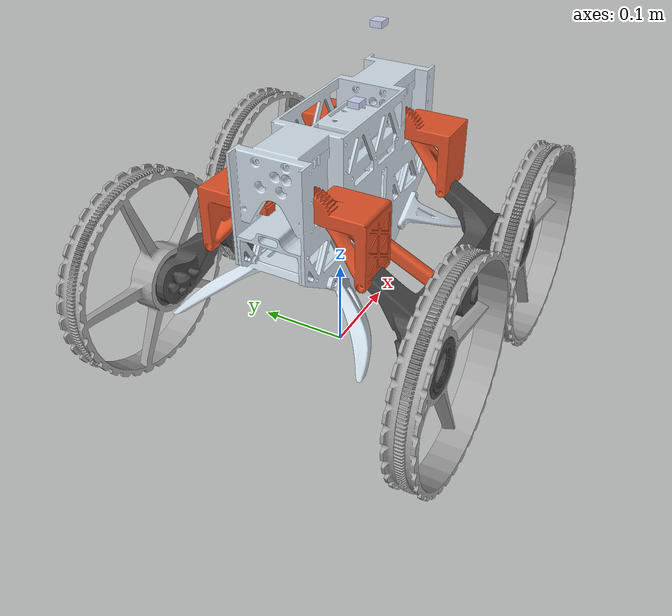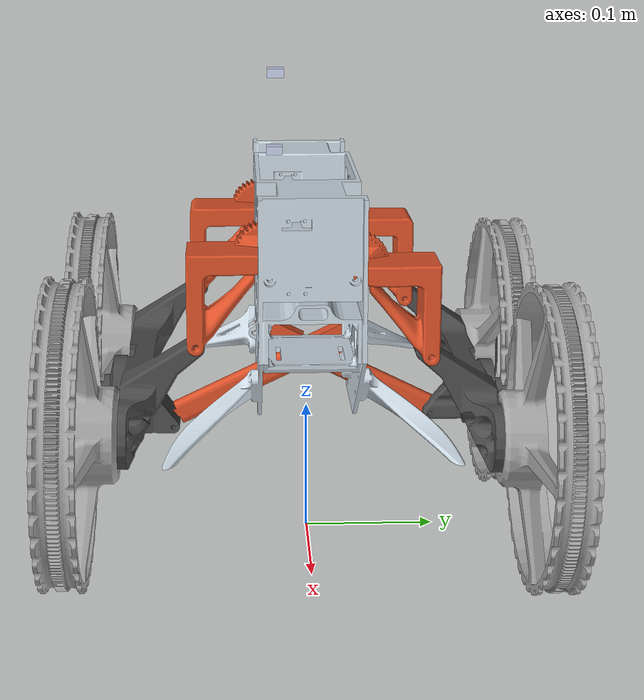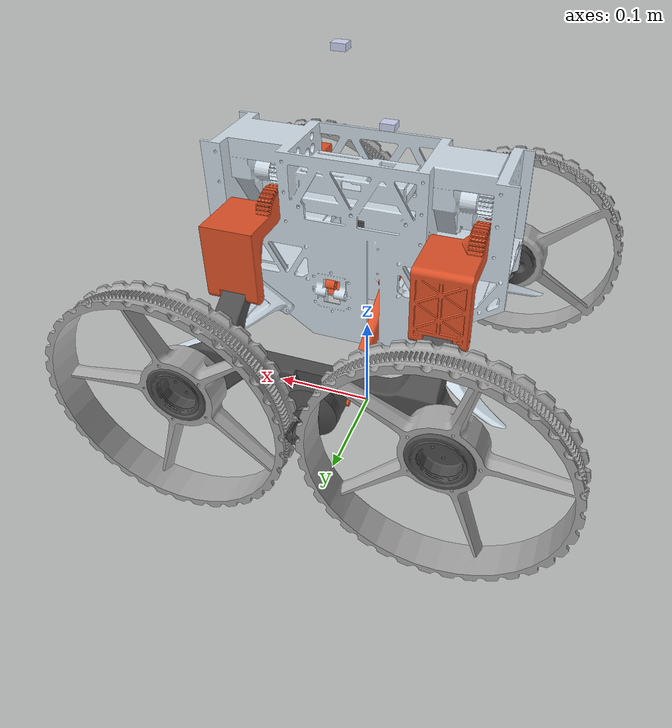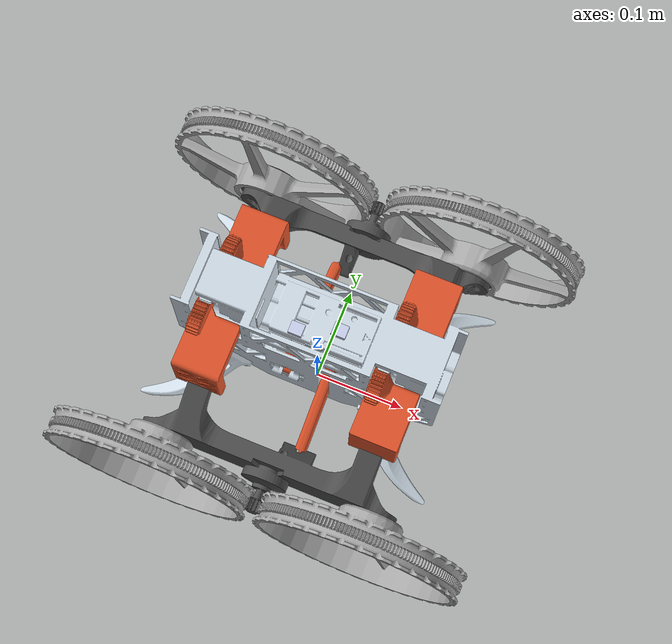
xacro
<?xml version="1.0"?>
<robot xmlns:xacro="http://ros.org/wiki/xacro" name="drobot">

  <xacro:include filename="$(find drobot_description)/urdf/gazebo.xacro"/>

  <xacro:arg name="use_sim" default="true"/>
  <xacro:arg name="use_ros2_control" default="true"/>

  <!-- ==================== MATERIALS ==================== -->
  <material name="base_color"><color rgba="0.81 0.86 0.90 1"/></material>
  <material name="arm_color"><color rgba="0.87 0.32 0.16 1"/></material>
  <material name="frame_color"><color rgba="0.30 0.30 0.30 1"/></material>
  <material name="wheel_color"><color rgba="0.65 0.65 0.65 1"/></material>
  <material name="sensor_color"><color rgba="0.79 0.82 0.93 1"/></material>

  <!-- ==================== BASE ==================== -->
  <link name="base_footprint"/>

  <joint name="base_footprint_joint" type="fixed">
    <parent link="base_footprint"/>
    <child link="base_link"/>
    <origin xyz="0 0 0" rpy="0 0 0"/>
  </joint>

  <link name="base_link">
    <inertial>
      <origin xyz="0.00458103694773914 -0.00104664211572963 0.221167547284754" rpy="0 0 0"/>
      <mass value="0.832637440945029"/>
      <inertia ixx="0.000773069077682801" ixy="-7.38474804169069E-08" ixz="3.15446327066613E-05"
               iyy="0.00170450440360595" iyz="9.65699121565219E-07" izz="0.00134874358561967"/>
    </inertial>
    <visual>
      <origin xyz="0 0 0" rpy="0 0 0"/>
      <geometry><mesh filename="package://drobot_description/meshes/base_link.STL"/></geometry>
      <material name="base_color"/>
    </visual>
    <collision>
      <origin xyz="0 0 0" rpy="0 0 0"/>
      <geometry><mesh filename="package://drobot_description/meshes/base_link.STL"/></geometry>
    </collision>
  </link>

  <!-- ==================== LIDAR ==================== -->
  <link name="base_scan">
    <inertial>
      <origin xyz="-0.0215847721606996 0.00397566854868606 -0.00218033584701988" rpy="0 0 0"/>
      <mass value="0.00105539669078503"/>
      <inertia ixx="1.6596115838381E-08" ixy="4.5351666504703E-24" ixz="-8.45778550488722E-25"
               iyy="1.98921505758854E-08" iyz="2.17400907909987E-25" izz="2.93717011285355E-08"/>
    </inertial>
    <visual>
      <origin xyz="0 0 0" rpy="0 0 0"/>
      <geometry><mesh filename="package://drobot_description/meshes/lidar.STL"/></geometry>
      <material name="sensor_color"/>
    </visual>
    <collision>
      <origin xyz="0 0 0" rpy="0 0 0"/>
      <geometry><mesh filename="package://drobot_description/meshes/lidar.STL"/></geometry>
    </collision>
  </link>

  <joint name="lidar_joint" type="fixed">
    <origin xyz="0.010101 -0.027788 0.30154" rpy="0 0 0"/>
    <parent link="base_link"/>
    <child link="base_scan"/>
  </joint>

  <!-- ==================== CAMERA ==================== -->
  <link name="camera_link">
    <inertial>
      <origin xyz="-0.0215847721606996 0.00397566854868603 -0.00218033584701988" rpy="3.1416 0 3.1416"/>
      <mass value="0.00105539669078502"/>
      <inertia ixx="1.65961158383809E-08" ixy="-6.9134081160347E-24" ixz="-1.3026067311437E-23"
               iyy="1.98921505758854E-08" iyz="1.59079600624928E-24" izz="2.93717011285354E-08"/>
    </inertial>
    <visual>
      <origin xyz="0 0 0" rpy="3.1416 0 3.1416"/>
      <geometry><mesh filename="package://drobot_description/meshes/camera.STL"/></geometry>
      <material name="sensor_color"/>
    </visual>
    <collision>
      <origin xyz="0 0 0" rpy="3.1416 0 3.1416"/>
      <geometry><mesh filename="package://drobot_description/meshes/camera.STL"/></geometry>
    </collision>
  </link>

  <joint name="camera_joint" type="fixed">
    <origin xyz="0.010101 -0.027788 0.36" rpy="0 0 0"/>
    <parent link="base_link"/>
    <child link="camera_link"/>
  </joint>

  <link name="camera_link_optical"/>
  <joint name="camera_optical_joint" type="fixed">
    <origin xyz="0 0 0" rpy="-1.5707963267948966 0 -1.5707963267948966"/>
    <parent link="camera_link"/>
    <child link="camera_link_optical"/>
  </joint>

  <!-- ==================== IMU (virtual, no mesh) ==================== -->
  <link name="imu_link">
    <inertial>
      <origin xyz="0 0 0" rpy="0 0 0"/>
      <mass value="0.01"/>
      <inertia ixx="1e-06" ixy="0" ixz="0" iyy="1e-06" iyz="0" izz="1e-06"/>
    </inertial>
  </link>

  <joint name="imu_joint" type="fixed">
    <parent link="base_link"/>
    <child link="imu_link"/>
    <origin xyz="0 0 0.01" rpy="0 0 0"/>
  </joint>

  <!-- ==================== LEFT FRONT ARM ==================== -->
  <link name="left_front_arm">
    <inertial>
      <origin xyz="0.018998 0.04 0.112534" rpy="0 0 0"/>
      <mass value="0.123064431731573"/>
      <inertia ixx="0.000135741612972814" ixy="6.13644622591408E-06" ixz="-3.91949328277525E-06"
               iyy="6.76036048729945E-05" iyz="4.48906032629936E-05" izz="0.000106939767969889"/>
    </inertial>
    <visual>
      <origin xyz="0 0 -0.216881" rpy="0 0 0"/>
      <geometry><mesh filename="package://drobot_description/meshes/left_front_arm.STL"/></geometry>
      <material name="arm_color"/>
    </visual>
    <collision>
      <origin xyz="0 0 -0.216881" rpy="0 0 0"/>
      <geometry><mesh filename="package://drobot_description/meshes/left_front_arm.STL"/></geometry>
    </collision>
  </link>

  <joint name="lf_arm_rev" type="revolute">
    <origin xyz="0.001 0.024 0.240" rpy="3.1416 0 3.1416"/>
    <parent link="base_link"/>
    <child link="left_front_arm"/>
    <axis xyz="-1 0 0"/>
    <limit lower="0" upper="1.5708" effort="14.0" velocity="0.5"/>
    <dynamics damping="4.0" friction="5.0"/>
  </joint>

  <!-- ==================== LEFT SIDE FRAME ==================== -->
  <link name="left_side_frame">
    <inertial>
      <origin xyz="0.000123207540564108 0.109960226689103 0.335761073502946" rpy="0 0 0"/>
      <mass value="0.385275324463581"/>
      <inertia ixx="0.000226753304752499" ixy="-1.11398827218514E-05" ixz="6.22551133000347E-06"
               iyy="0.00238329526316141" iyz="-5.33911597507339E-05" izz="0.00245899243822558"/>
    </inertial>
    <visual>
      <origin xyz="0 0 0" rpy="0 0 0"/>
      <geometry><mesh filename="package://drobot_description/meshes/left_side_frame.STL"/></geometry>
      <material name="frame_color"/>
    </visual>
    <collision>
      <origin xyz="0 0 0" rpy="0 0 0"/>
      <geometry><mesh filename="package://drobot_description/meshes/left_side_frame.STL"/></geometry>
    </collision>
  </link>

  <joint name="left_sf_fix" type="fixed">
    <origin xyz="0.0005 -0.000798 -0.217469" rpy="0.010035 0 0"/>
    <parent link="left_front_arm"/>
    <child link="left_side_frame"/>
  </joint>

  <!-- ==================== LEFT FRONT WHEEL ==================== -->
  <link name="left_front_wheel">
    <inertial>
      <origin xyz="-3.80634406216274E-08 0.0147130977298118 -4.33058131021902E-08" rpy="0 0 0"/>
      <mass value="0.154468227846206"/>
      <inertia ixx="0.000600972336966455" ixy="-1.7094296974559E-11" ixz="1.67775124672545E-10"
               iyy="0.00115446036705922" iyz="-2.61109881198951E-11" izz="0.000600972175604584"/>
    </inertial>
    <visual>
      <origin xyz="0 0 0" rpy="0 0 0"/>
      <geometry><mesh filename="package://drobot_description/meshes/left_front_wheel.STL"/></geometry>
      <material name="wheel_color"/>
    </visual>
    <collision>
      <origin xyz="0 0 0" rpy="0 0 0"/>
      <geometry><mesh filename="package://drobot_description/meshes/left_front_wheel.STL"/></geometry>
    </collision>
  </link>

  <joint name="lf_wheel_con" type="continuous">
    <origin xyz="-0.11656 0.128 0.346" rpy="0 0 0"/>
    <parent link="left_side_frame"/>
    <child link="left_front_wheel"/>
    <axis xyz="0 1 0"/>
    <dynamics damping="0.1" friction="0.05"/>
  </joint>

  <!-- ==================== LEFT REAR WHEEL ==================== -->
  <link name="left_rear_wheel">
    <inertial>
      <origin xyz="-0.000764539518262372 0.0131052613053511 -0.000764533553625352" rpy="0 0 0"/>
      <mass value="0.152313021640434"/>
      <inertia ixx="0.000598326645638881" ixy="1.16817760587612E-11" ixz="1.64181067073089E-10"
               iyy="0.00115252805512864" iyz="2.67998148070656E-11" izz="0.000598326477272364"/>
    </inertial>
    <visual>
      <origin xyz="0 0 0" rpy="0 0 0"/>
      <geometry><mesh filename="package://drobot_description/meshes/left_rear_wheel.STL"/></geometry>
      <material name="wheel_color"/>
    </visual>
    <collision>
      <origin xyz="0 0 0" rpy="0 0 0"/>
      <geometry><mesh filename="package://drobot_description/meshes/left_rear_wheel.STL"/></geometry>
    </collision>
  </link>

  <joint name="lr_wheel_con" type="continuous">
    <origin xyz="0.11733 0.128 0.34676" rpy="0 0 0"/>
    <parent link="left_side_frame"/>
    <child link="left_rear_wheel"/>
    <axis xyz="0 1 0"/>
    <dynamics damping="0.1" friction="0.05"/>
  </joint>

  <!-- ==================== LEFT REAR ARM ==================== -->
  <!-- SW2URDF exported mass=0, inertia=0 (degenerate).
       Fixed to mass=0.05, inertia=1e-04 for stable simulation. -->
  <link name="left_rear_arm">
    <inertial>
      <origin xyz="0.018998 -0.000534 0.112534" rpy="0 0 0"/>
      <mass value="0.123064431731573"/>
      <inertia ixx="0.000135741612972814" ixy="6.13644622591408E-06" ixz="-3.91949328277525E-06"
               iyy="6.76036048729945E-05" iyz="4.48906032629936E-05" izz="0.000106939767969889"/>
    </inertial>
    <visual>
      <origin xyz="0 -0.022671 -0.216881" rpy="0 0 0"/>
      <geometry><mesh filename="package://drobot_description/meshes/left_rear_arm.STL"/></geometry>
      <material name="arm_color"/>
    </visual>
  </link>

  <joint name="lr_arm_rev" type="revolute">
    <origin xyz="0.001 0.024 0.240" rpy="1.5708 0 3.1416"/>
    <parent link="base_link"/>
    <child link="left_rear_arm"/>
    <axis xyz="-1 0 0"/>
    <limit lower="0" upper="1.5708" effort="14.0" velocity="0.5"/>
    <dynamics damping="3.0" friction="3.0"/>
  </joint>

  <!-- ==================== RIGHT FRONT ARM ==================== -->
  <link name="right_front_arm">
    <inertial>
      <origin xyz="-0.072133 0.017001 -0.051593" rpy="0 0 0"/>
      <mass value="0.123064431731573"/>
      <inertia ixx="0.000135741612972814" ixy="6.13644622591408E-06" ixz="-3.91949328277525E-06"
               iyy="6.76036048729945E-05" iyz="4.48906032629936E-05" izz="0.000106939767969889"/>
    </inertial>
    <visual>
      <origin xyz="0 -0.002488 -0.175993" rpy="0 0 0"/>
      <geometry><mesh filename="package://drobot_description/meshes/right_front_arm.STL"/></geometry>
      <material name="arm_color"/>
    </visual>
    <collision>
      <origin xyz="0 -0.002488 -0.175993" rpy="0 0 0"/>
      <geometry><mesh filename="package://drobot_description/meshes/right_front_arm.STL"/></geometry>
    </collision>
  </link>

  <joint name="rf_arm_rev" type="revolute">
    <origin xyz="0.001 -0.025 0.249" rpy="0 0 3.1416"/>
    <parent link="base_link"/>
    <child link="right_front_arm"/>
    <axis xyz="1 0 0"/>
    <limit lower="0" upper="1.5708" effort="14.0" velocity="0.5"/>
    <dynamics damping="4.0" friction="5.0"/>
  </joint>

  <!-- ==================== RIGHT SIDE FRAME ==================== -->
  <link name="right_side_frame">
    <inertial>
      <origin xyz="-0.0016945696607339 0.00768032725914354 0.0578233422450269" rpy="0 0 0"/>
      <mass value="0.385275324463581"/>
      <inertia ixx="0.000226753304752499" ixy="-1.11398827218514E-05" ixz="6.22551133000347E-06"
               iyy="0.00238329526316141" iyz="-5.33911597507339E-05" izz="0.00245899243822558"/>
    </inertial>
    <visual>
      <origin xyz="0 0 0" rpy="0 0 0"/>
      <geometry><mesh filename="package://drobot_description/meshes/right_side_frame.STL"/></geometry>
      <material name="frame_color"/>
    </visual>
    <collision>
      <origin xyz="0 0 0" rpy="0 0 0"/>
      <geometry><mesh filename="package://drobot_description/meshes/right_side_frame.STL"/></geometry>
    </collision>
  </link>

  <joint name="right_sf_fix" type="fixed">
    <origin xyz="0.0005 0.165912 -0.131417" rpy="1.5947 0 0"/>
    <parent link="right_front_arm"/>
    <child link="right_side_frame"/>
  </joint>

  <!-- ==================== RIGHT FRONT WHEEL ==================== -->
  <link name="right_front_wheel">
    <inertial>
      <origin xyz="3.51455239633314E-08 0.0147130944445312 -4.61456092365475E-08" rpy="0 0 0"/>
      <mass value="0.15446818358736"/>
      <inertia ixx="0.000600972029928564" ixy="2.98508353457573E-11" ixz="-1.05292533647964E-10"
               iyy="0.00115446021177649" iyz="-1.79621475028882E-11" izz="0.000600972338304762"/>
    </inertial>
    <visual>
      <origin xyz="0 0 0" rpy="0 0 0"/>
      <geometry><mesh filename="package://drobot_description/meshes/right_front_wheel.STL"/></geometry>
      <material name="wheel_color"/>
    </visual>
    <collision>
      <origin xyz="0 0 0" rpy="0 0 0"/>
      <geometry><mesh filename="package://drobot_description/meshes/right_front_wheel.STL"/></geometry>
    </collision>
  </link>

  <!-- RIGHT WHEELS: axis kept at (0,-1,0) as exported.
       Right arm rpy~(0,0,pi) does NOT flip Y in the same way,
       so original axis direction produces correct forward motion. -->
  <joint name="rf_wheel_con" type="continuous">
    <origin xyz="-0.11656 0 0.039" rpy="-1.5708 0 0"/>
    <parent link="right_side_frame"/>
    <child link="right_front_wheel"/>
    <axis xyz="0 -1 0"/>
    <dynamics damping="0.1" friction="0.05"/>
  </joint>

  <!-- ==================== RIGHT REAR WHEEL ==================== -->
  <link name="right_rear_wheel">
    <inertial>
      <origin xyz="3.51455232278086E-08 0.0147130944445312 -4.61456094308366E-08" rpy="0 0 0"/>
      <mass value="0.154468183587361"/>
      <inertia ixx="0.000600972029928563" ixy="2.98508356715693E-11" ixz="-1.05292536456407E-10"
               iyy="0.00115446021177649" iyz="-1.79621477375163E-11" izz="0.000600972338304764"/>
    </inertial>
    <visual>
      <origin xyz="0 0 0" rpy="0 0 0"/>
      <geometry><mesh filename="package://drobot_description/meshes/right_rear_wheel.STL"/></geometry>
      <material name="wheel_color"/>
    </visual>
    <collision>
      <origin xyz="0 0 0" rpy="0 0 0"/>
      <geometry><mesh filename="package://drobot_description/meshes/right_rear_wheel.STL"/></geometry>
    </collision>
  </link>

  <joint name="rr_wheel_con" type="continuous">
    <origin xyz="0.11656 0 0.039" rpy="-1.5708 0 0"/>
    <parent link="right_side_frame"/>
    <child link="right_rear_wheel"/>
    <axis xyz="0 -1 0"/>
    <dynamics damping="0.1" friction="0.05"/>
  </joint>

  <!-- ==================== RIGHT REAR ARM ==================== -->
  <link name="right_rear_arm">
    <inertial>
      <origin xyz="-0.072133 0.027001 -0.151593" rpy="0 0 0"/>
      <mass value="0.123064431731573"/>
      <inertia ixx="0.000135741612972814" ixy="6.13644622591408E-06" ixz="-3.91949328277525E-06"
               iyy="6.76036048729945E-05" iyz="4.48906032629936E-05" izz="0.000106939767969889"/>
    </inertial>
    <visual>
      <origin xyz="0 -0.022488 -0.175993" rpy="0 0 0"/>
      <geometry><mesh filename="package://drobot_description/meshes/right_rear_arm.STL"/></geometry>
      <material name="arm_color"/>
    </visual>
    <!-- deleted temporarly-->
  </link>

  <joint name="rr_arm_rev" type="revolute">
    <origin xyz="0.001 -0.025 0.249" rpy="1.5708 0 3.1416"/>
    <parent link="base_link"/>
    <child link="right_rear_arm"/>
    <axis xyz="1 0 0"/>
    <limit lower="0" upper="1.5708" effort="14.0" velocity="0.5"/>
    <dynamics damping="3.0" friction="3.0"/>
  </joint>

  <!-- ==================== ROS2 CONTROL ==================== -->
  <xacro:if value="$(arg use_ros2_control)">
    <xacro:include filename="$(find drobot_description)/urdf/ros2_control.xacro"/>
  </xacro:if>

</robot>
